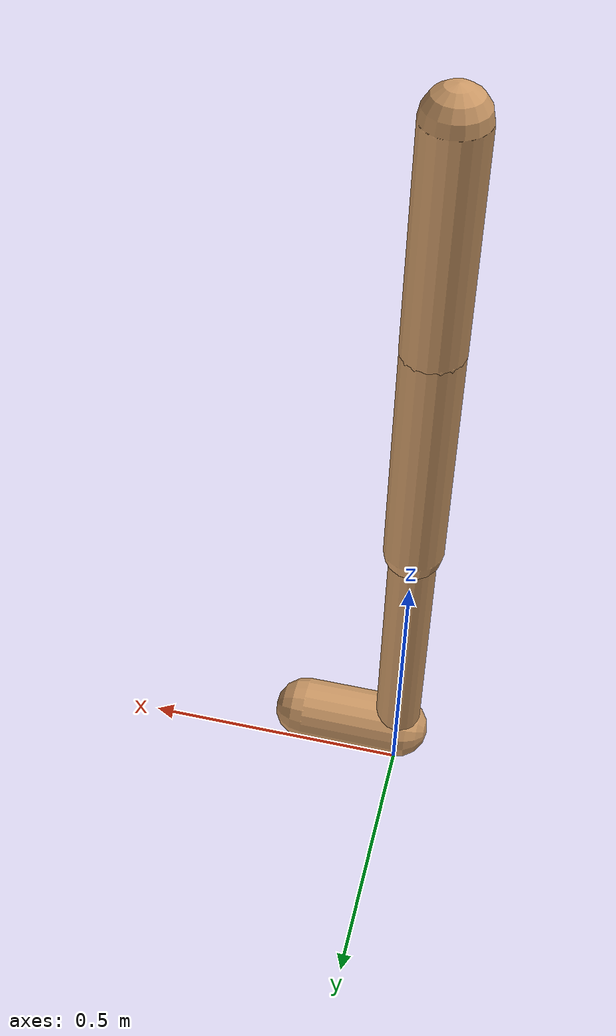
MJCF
<mujoco model="walker2d">
  <compiler angle="degree" coordinate="global" inertiafromgeom="true" />
  <default>
    <joint armature="0.01" damping=".1" limited="true" />
    <geom conaffinity="0" condim="3" contype="1" density="1000" friction="0.8 .1 .1" rgba="0.8 0.6 .4 1" />
  </default>
  <option integrator="RK4" timestep="0.002" />
  <worldbody>

    <body name="torso" pos="0 0 -0.014611158723656396">
      <joint armature="0" axis="1 0 0" damping="0" limited="false" name="ignorex" pos="0 0 0" stiffness="0" type="slide" />
      <joint armature="0" axis="0 0 1" damping="0" limited="false" name="ignorez" pos="0 0 0" ref="1.25" stiffness="0" type="slide" />
      <joint armature="0" axis="0 1 0" damping="0" limited="false" name="ignorey" pos="0 0 0" stiffness="0" type="hinge" />
      <geom fromto="0 0 1.45 0 0 1.05" name="torso_geom" size="0.05444867807292062" type="capsule" />
      <body name="thigh">
        <joint axis="0 -1 0" name="thigh_joint" pos="0 0 1.05" range="-150 0" type="hinge" />
        <geom fromto="0.0 0.0 1.05 0.0 0.0 0.6069210751848898" name="thigh_geom" size="0.053904635963568384" type="capsule" />
        <body name="leg" pos="0.0 0.0 0.006921075184889824">
          <joint axis="0 -1 0" name="leg_joint" pos="0 0 0.6" range="-150 0" type="hinge" />
          <geom fromto="0.0 0.0 0.6 0.0 0.0 0.10769008353876652" name="leg_geom" size="0.0431237087708547" type="capsule" />
          <body name="foot" pos="0.0 0.0 0.007690083538766518">
            <joint axis="0 -1 0" name="foot_joint" pos="0 0 0.1" range="-45 45" type="hinge" />
            <geom fromto="0.0 0.0 0.1 0.18331335042899446 0.0 0.1" name="foot_geom" size="0.06131271846490119" type="capsule" />
          </body>
        </body>
      </body>

      <body name="thigh_left">
        <joint axis="0 -1 0" name="thigh_left_joint" pos="0 0 1.05" range="-150 0" type="hinge" />
        <geom fromto="0.0 0.0 1.05 0.0 0.0 0.6069210751848898" name="thigh_left_geom" rgba=".7 .3 .6 1" size="0.053904635963568384" type="capsule" />
        <body name="leg_left" pos="0.0 0.0 0.006921075184889824">
          <joint axis="0 -1 0" name="leg_left_joint" pos="0 0 0.6" range="-150 0" type="hinge" />
          <geom fromto="0.0 0.0 0.6 0.0 0.0 0.10769008353876652" name="leg_left_geom" rgba=".7 .3 .6 1" size="0.0431237087708547" type="capsule" />
          <body name="foot_left" pos="0.0 0.0 0.007690083538766518">
            <joint axis="0 -1 0" name="foot_left_joint" pos="0 0 0.1" range="-45 45" type="hinge" />
            <geom fromto="0.0 0.0 0.1 0.18331335042899446 0.0 0.1" name="foot_left_geom" rgba=".7 .3 .6 1" size="0.06131271846490119" type="capsule" />
          </body>
        </body>
      </body>
    </body>
  </worldbody>
  <actuator>

    <motor ctrllimited="true" ctrlrange="-1.0 1.0" gear="100" joint="thigh_joint" />
    <motor ctrllimited="true" ctrlrange="-1.0 1.0" gear="100" joint="leg_joint" />
    <motor ctrllimited="true" ctrlrange="-1.0 1.0" gear="100" joint="foot_joint" />
    <motor ctrllimited="true" ctrlrange="-1.0 1.0" gear="100" joint="thigh_left_joint" />
    <motor ctrllimited="true" ctrlrange="-1.0 1.0" gear="100" joint="leg_left_joint" />
    <motor ctrllimited="true" ctrlrange="-1.0 1.0" gear="100" joint="foot_left_joint" />

  </actuator>
</mujoco>
